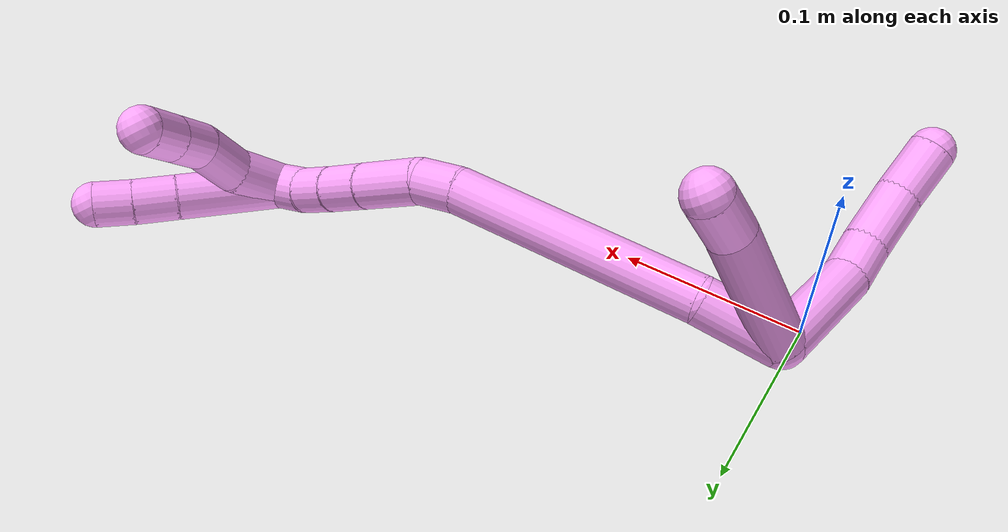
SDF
<sdf version="1.7">
 <world name="default">
  <model name="4">
   <static>0</static>
   <link name="4">
    <collision name="collision-cylinder-e_1_2_8">
     <pose>-0.020365 -0.023956 0.000604 1.54558 -0.704399 -0.688227</pose>
     <geometry><cylinder><radius>0.0125</radius><length>0.062897</length></cylinder></geometry>
     <surface>
      <friction><ode><mu>1.16</mu><mu2>1.16</mu2><slip1>0</slip1><slip2>0</slip2></ode></friction>
      <contact><ode><kp>1e+06</kp><kd>1</kd><max_vel>0</max_vel><min_depth>0.001</min_depth></ode></contact>
     </surface>
    </collision>
    <visual name="visual-cylinder-e_1_2_8">
     <pose>-0.020365 -0.023956 0.000604 1.54558 -0.704399 -0.688227</pose>
     <geometry><cylinder><radius>0.0125</radius><length>0.062897</length></cylinder></geometry>
     <material><ambient>1 0.65098 0.996078 1</ambient></material>
    </visual>
    <collision name="collision-cylinder-e_2_8_9">
     <pose>-0.048539 -0.055523 0.004621 1.14926 -0.752421 -0.500836</pose>
     <geometry><cylinder><radius>0.0125</radius><length>0.022851</length></cylinder></geometry>
     <surface>
      <friction><ode><mu>1.16</mu><mu2>1.16</mu2><slip1>0</slip1><slip2>0</slip2></ode></friction>
      <contact><ode><kp>1e+06</kp><kd>1</kd><max_vel>0</max_vel><min_depth>0.001</min_depth></ode></contact>
     </surface>
    </collision>
    <visual name="visual-cylinder-e_2_8_9">
     <pose>-0.048539 -0.055523 0.004621 1.14926 -0.752421 -0.500836</pose>
     <geometry><cylinder><radius>0.0125</radius><length>0.022851</length></cylinder></geometry>
     <material><ambient>1 0.65098 0.996078 1</ambient></material>
    </visual>
    <collision name="collision-cylinder-e_3_9_10">
     <pose>-0.069537 -0.072492 0.01404 1.0002 -0.87037 -0.49756</pose>
     <geometry><cylinder><radius>0.0125</radius><length>0.034504</length></cylinder></geometry>
     <surface>
      <friction><ode><mu>1.16</mu><mu2>1.16</mu2><slip1>0</slip1><slip2>0</slip2></ode></friction>
      <contact><ode><kp>1e+06</kp><kd>1</kd><max_vel>0</max_vel><min_depth>0.001</min_depth></ode></contact>
     </surface>
    </collision>
    <visual name="visual-cylinder-e_3_9_10">
     <pose>-0.069537 -0.072492 0.01404 1.0002 -0.87037 -0.49756</pose>
     <geometry><cylinder><radius>0.0125</radius><length>0.034504</length></cylinder></geometry>
     <material><ambient>1 0.65098 0.996078 1</ambient></material>
    </visual>
    <collision name="collision-cylinder-e_4_10_6">
     <pose>-0.095184 -0.087247 0.026125 0.725998 -0.992618 -0.405713</pose>
     <geometry><cylinder><radius>0.0125</radius><length>0.029748</length></cylinder></geometry>
     <surface>
      <friction><ode><mu>1.16</mu><mu2>1.16</mu2><slip1>0</slip1><slip2>0</slip2></ode></friction>
      <contact><ode><kp>1e+06</kp><kd>1</kd><max_vel>0</max_vel><min_depth>0.001</min_depth></ode></contact>
     </surface>
    </collision>
    <visual name="visual-cylinder-e_4_10_6">
     <pose>-0.095184 -0.087247 0.026125 0.725998 -0.992618 -0.405713</pose>
     <geometry><cylinder><radius>0.0125</radius><length>0.029748</length></cylinder></geometry>
     <material><ambient>1 0.65098 0.996078 1</ambient></material>
    </visual>
    <collision name="collision-cylinder-e_1_2_11">
     <pose>-0.000313 0.013034 0.033259 -0.373498 -0.008771 0.001657</pose>
     <geometry><cylinder><radius>0.0125</radius><length>0.071446</length></cylinder></geometry>
     <surface>
      <friction><ode><mu>1.16</mu><mu2>1.16</mu2><slip1>0</slip1><slip2>0</slip2></ode></friction>
      <contact><ode><kp>1e+06</kp><kd>1</kd><max_vel>0</max_vel><min_depth>0.001</min_depth></ode></contact>
     </surface>
    </collision>
    <visual name="visual-cylinder-e_1_2_11">
     <pose>-0.000313 0.013034 0.033259 -0.373498 -0.008771 0.001657</pose>
     <geometry><cylinder><radius>0.0125</radius><length>0.071446</length></cylinder></geometry>
     <material><ambient>1 0.65098 0.996078 1</ambient></material>
    </visual>
    <collision name="collision-cylinder-e_2_11_5">
     <pose>0.000224 0.034198 0.078223 -0.607083 0.059624 -0.01868</pose>
     <geometry><cylinder><radius>0.0125</radius><length>0.028554</length></cylinder></geometry>
     <surface>
      <friction><ode><mu>1.16</mu><mu2>1.16</mu2><slip1>0</slip1><slip2>0</slip2></ode></friction>
      <contact><ode><kp>1e+06</kp><kd>1</kd><max_vel>0</max_vel><min_depth>0.001</min_depth></ode></contact>
     </surface>
    </collision>
    <visual name="visual-cylinder-e_2_11_5">
     <pose>0.000224 0.034198 0.078223 -0.607083 0.059624 -0.01868</pose>
     <geometry><cylinder><radius>0.0125</radius><length>0.028554</length></cylinder></geometry>
     <material><ambient>1 0.65098 0.996078 1</ambient></material>
    </visual>
    <collision name="collision-cylinder-e_1_2_12">
     <pose>0.01318 -0.001692 0.017208 0.098008 0.651278 0.033117</pose>
     <geometry><cylinder><radius>0.0125</radius><length>0.043482</length></cylinder></geometry>
     <surface>
      <friction><ode><mu>1.16</mu><mu2>1.16</mu2><slip1>0</slip1><slip2>0</slip2></ode></friction>
      <contact><ode><kp>1e+06</kp><kd>1</kd><max_vel>0</max_vel><min_depth>0.001</min_depth></ode></contact>
     </surface>
    </collision>
    <visual name="visual-cylinder-e_1_2_12">
     <pose>0.01318 -0.001692 0.017208 0.098008 0.651278 0.033117</pose>
     <geometry><cylinder><radius>0.0125</radius><length>0.043482</length></cylinder></geometry>
     <material><ambient>1 0.65098 0.996078 1</ambient></material>
    </visual>
    <collision name="collision-cylinder-e_2_12_13">
     <pose>0.072008 -0.026072 0.079215 0.468792 0.737791 0.184103</pose>
     <geometry><cylinder><radius>0.0125</radius><length>0.135728</length></cylinder></geometry>
     <surface>
      <friction><ode><mu>1.16</mu><mu2>1.16</mu2><slip1>0</slip1><slip2>0</slip2></ode></friction>
      <contact><ode><kp>1e+06</kp><kd>1</kd><max_vel>0</max_vel><min_depth>0.001</min_depth></ode></contact>
     </surface>
    </collision>
    <visual name="visual-cylinder-e_2_12_13">
     <pose>0.072008 -0.026072 0.079215 0.468792 0.737791 0.184103</pose>
     <geometry><cylinder><radius>0.0125</radius><length>0.135728</length></cylinder></geometry>
     <material><ambient>1 0.65098 0.996078 1</ambient></material>
    </visual>
    <collision name="collision-cylinder-e_3_13_14">
     <pose>0.126571 -0.052171 0.130102 0.510625 0.906542 0.252916</pose>
     <geometry><cylinder><radius>0.0125</radius><length>0.022642</length></cylinder></geometry>
     <surface>
      <friction><ode><mu>1.16</mu><mu2>1.16</mu2><slip1>0</slip1><slip2>0</slip2></ode></friction>
      <contact><ode><kp>1e+06</kp><kd>1</kd><max_vel>0</max_vel><min_depth>0.001</min_depth></ode></contact>
     </surface>
    </collision>
    <visual name="visual-cylinder-e_3_13_14">
     <pose>0.126571 -0.052171 0.130102 0.510625 0.906542 0.252916</pose>
     <geometry><cylinder><radius>0.0125</radius><length>0.022642</length></cylinder></geometry>
     <material><ambient>1 0.65098 0.996078 1</ambient></material>
    </visual>
    <collision name="collision-cylinder-e_4_14_15">
     <pose>0.151263 -0.061744 0.140578 0.952089 1.12376 0.627749</pose>
     <geometry><cylinder><radius>0.0125</radius><length>0.034995</length></cylinder></geometry>
     <surface>
      <friction><ode><mu>1.16</mu><mu2>1.16</mu2><slip1>0</slip1><slip2>0</slip2></ode></friction>
      <contact><ode><kp>1e+06</kp><kd>1</kd><max_vel>0</max_vel><min_depth>0.001</min_depth></ode></contact>
     </surface>
    </collision>
    <visual name="visual-cylinder-e_4_14_15">
     <pose>0.151263 -0.061744 0.140578 0.952089 1.12376 0.627749</pose>
     <geometry><cylinder><radius>0.0125</radius><length>0.034995</length></cylinder></geometry>
     <material><ambient>1 0.65098 0.996078 1</ambient></material>
    </visual>
    <collision name="collision-cylinder-e_5_15_16">
     <pose>0.177183 -0.07251 0.147664 1.04047 1.08638 0.666009</pose>
     <geometry><cylinder><radius>0.0125</radius><length>0.02292</length></cylinder></geometry>
     <surface>
      <friction><ode><mu>1.16</mu><mu2>1.16</mu2><slip1>0</slip1><slip2>0</slip2></ode></friction>
      <contact><ode><kp>1e+06</kp><kd>1</kd><max_vel>0</max_vel><min_depth>0.001</min_depth></ode></contact>
     </surface>
    </collision>
    <visual name="visual-cylinder-e_5_15_16">
     <pose>0.177183 -0.07251 0.147664 1.04047 1.08638 0.666009</pose>
     <geometry><cylinder><radius>0.0125</radius><length>0.02292</length></cylinder></geometry>
     <material><ambient>1 0.65098 0.996078 1</ambient></material>
    </visual>
    <collision name="collision-cylinder-e_6_16_17">
     <pose>0.195906 -0.081759 0.152755 1.09545 1.02383 0.660373</pose>
     <geometry><cylinder><radius>0.0125</radius><length>0.020093</length></cylinder></geometry>
     <surface>
      <friction><ode><mu>1.16</mu><mu2>1.16</mu2><slip1>0</slip1><slip2>0</slip2></ode></friction>
      <contact><ode><kp>1e+06</kp><kd>1</kd><max_vel>0</max_vel><min_depth>0.001</min_depth></ode></contact>
     </surface>
    </collision>
    <visual name="visual-cylinder-e_6_16_17">
     <pose>0.195906 -0.081759 0.152755 1.09545 1.02383 0.660373</pose>
     <geometry><cylinder><radius>0.0125</radius><length>0.020093</length></cylinder></geometry>
     <material><ambient>1 0.65098 0.996078 1</ambient></material>
    </visual>
    <collision name="collision-cylinder-e_7_17_1">
     <pose>0.212278 -0.091425 0.159082 0.905892 0.884743 0.453158</pose>
     <geometry><cylinder><radius>0.0125</radius><length>0.020139</length></cylinder></geometry>
     <surface>
      <friction><ode><mu>1.16</mu><mu2>1.16</mu2><slip1>0</slip1><slip2>0</slip2></ode></friction>
      <contact><ode><kp>1e+06</kp><kd>1</kd><max_vel>0</max_vel><min_depth>0.001</min_depth></ode></contact>
     </surface>
    </collision>
    <visual name="visual-cylinder-e_7_17_1">
     <pose>0.212278 -0.091425 0.159082 0.905892 0.884743 0.453158</pose>
     <geometry><cylinder><radius>0.0125</radius><length>0.020139</length></cylinder></geometry>
     <material><ambient>1 0.65098 0.996078 1</ambient></material>
    </visual>
    <collision name="collision-cylinder-e_1_1_18">
     <pose>0.243839 -0.085122 0.173192 -0.838817 1.00118 -0.478495</pose>
     <geometry><cylinder><radius>0.0125</radius><length>0.056452</length></cylinder></geometry>
     <surface>
      <friction><ode><mu>1.16</mu><mu2>1.16</mu2><slip1>0</slip1><slip2>0</slip2></ode></friction>
      <contact><ode><kp>1e+06</kp><kd>1</kd><max_vel>0</max_vel><min_depth>0.001</min_depth></ode></contact>
     </surface>
    </collision>
    <visual name="visual-cylinder-e_1_1_18">
     <pose>0.243839 -0.085122 0.173192 -0.838817 1.00118 -0.478495</pose>
     <geometry><cylinder><radius>0.0125</radius><length>0.056452</length></cylinder></geometry>
     <material><ambient>1 0.65098 0.996078 1</ambient></material>
    </visual>
    <collision name="collision-cylinder-e_2_18_19">
     <pose>0.277588 -0.069799 0.187469 -0.772598 1.04962 -0.462544</pose>
     <geometry><cylinder><radius>0.0125</radius><length>0.023015</length></cylinder></geometry>
     <surface>
      <friction><ode><mu>1.16</mu><mu2>1.16</mu2><slip1>0</slip1><slip2>0</slip2></ode></friction>
      <contact><ode><kp>1e+06</kp><kd>1</kd><max_vel>0</max_vel><min_depth>0.001</min_depth></ode></contact>
     </surface>
    </collision>
    <visual name="visual-cylinder-e_2_18_19">
     <pose>0.277588 -0.069799 0.187469 -0.772598 1.04962 -0.462544</pose>
     <geometry><cylinder><radius>0.0125</radius><length>0.023015</length></cylinder></geometry>
     <material><ambient>1 0.65098 0.996078 1</ambient></material>
    </visual>
    <collision name="collision-cylinder-e_3_19_4">
     <pose>0.296386 -0.062511 0.195673 -0.67596 1.03317 -0.39411</pose>
     <geometry><cylinder><radius>0.0125</radius><length>0.020533</length></cylinder></geometry>
     <surface>
      <friction><ode><mu>1.16</mu><mu2>1.16</mu2><slip1>0</slip1><slip2>0</slip2></ode></friction>
      <contact><ode><kp>1e+06</kp><kd>1</kd><max_vel>0</max_vel><min_depth>0.001</min_depth></ode></contact>
     </surface>
    </collision>
    <visual name="visual-cylinder-e_3_19_4">
     <pose>0.296386 -0.062511 0.195673 -0.67596 1.03317 -0.39411</pose>
     <geometry><cylinder><radius>0.0125</radius><length>0.020533</length></cylinder></geometry>
     <material><ambient>1 0.65098 0.996078 1</ambient></material>
    </visual>
    <collision name="collision-cylinder-e_1_1_20">
     <pose>0.226178 -0.087089 0.172758 -0.765291 0.424801 -0.17316</pose>
     <geometry><cylinder><radius>0.0125</radius><length>0.029647</length></cylinder></geometry>
     <surface>
      <friction><ode><mu>1.16</mu><mu2>1.16</mu2><slip1>0</slip1><slip2>0</slip2></ode></friction>
      <contact><ode><kp>1e+06</kp><kd>1</kd><max_vel>0</max_vel><min_depth>0.001</min_depth></ode></contact>
     </surface>
    </collision>
    <visual name="visual-cylinder-e_1_1_20">
     <pose>0.226178 -0.087089 0.172758 -0.765291 0.424801 -0.17316</pose>
     <geometry><cylinder><radius>0.0125</radius><length>0.029647</length></cylinder></geometry>
     <material><ambient>1 0.65098 0.996078 1</ambient></material>
    </visual>
    <collision name="collision-cylinder-e_2_20_21">
     <pose>0.233681 -0.068739 0.192265 -0.744261 0.104563 -0.040844</pose>
     <geometry><cylinder><radius>0.0125</radius><length>0.0267</length></cylinder></geometry>
     <surface>
      <friction><ode><mu>1.16</mu><mu2>1.16</mu2><slip1>0</slip1><slip2>0</slip2></ode></friction>
      <contact><ode><kp>1e+06</kp><kd>1</kd><max_vel>0</max_vel><min_depth>0.001</min_depth></ode></contact>
     </surface>
    </collision>
    <visual name="visual-cylinder-e_2_20_21">
     <pose>0.233681 -0.068739 0.192265 -0.744261 0.104563 -0.040844</pose>
     <geometry><cylinder><radius>0.0125</radius><length>0.0267</length></cylinder></geometry>
     <material><ambient>1 0.65098 0.996078 1</ambient></material>
    </visual>
    <collision name="collision-cylinder-e_3_21_22">
     <pose>0.236826 -0.05003 0.207159 -1.0851 0.158076 -0.09543</pose>
     <geometry><cylinder><radius>0.0125</radius><length>0.022246</length></cylinder></geometry>
     <surface>
      <friction><ode><mu>1.16</mu><mu2>1.16</mu2><slip1>0</slip1><slip2>0</slip2></ode></friction>
      <contact><ode><kp>1e+06</kp><kd>1</kd><max_vel>0</max_vel><min_depth>0.001</min_depth></ode></contact>
     </surface>
    </collision>
    <visual name="visual-cylinder-e_3_21_22">
     <pose>0.236826 -0.05003 0.207159 -1.0851 0.158076 -0.09543</pose>
     <geometry><cylinder><radius>0.0125</radius><length>0.022246</length></cylinder></geometry>
     <material><ambient>1 0.65098 0.996078 1</ambient></material>
    </visual>
    <collision name="collision-cylinder-e_4_22_3">
     <pose>0.239931 -0.030783 0.216961 -1.11496 0.126873 -0.079163</pose>
     <geometry><cylinder><radius>0.0125</radius><length>0.021407</length></cylinder></geometry>
     <surface>
      <friction><ode><mu>1.16</mu><mu2>1.16</mu2><slip1>0</slip1><slip2>0</slip2></ode></friction>
      <contact><ode><kp>1e+06</kp><kd>1</kd><max_vel>0</max_vel><min_depth>0.001</min_depth></ode></contact>
     </surface>
    </collision>
    <visual name="visual-cylinder-e_4_22_3">
     <pose>0.239931 -0.030783 0.216961 -1.11496 0.126873 -0.079163</pose>
     <geometry><cylinder><radius>0.0125</radius><length>0.021407</length></cylinder></geometry>
     <material><ambient>1 0.65098 0.996078 1</ambient></material>
    </visual>
    <collision name="collision-sphere-3">
     <pose>0.241285 -0.02125 0.221635 0 -0 0</pose>
     <geometry><sphere><radius>0.0125</radius></sphere></geometry>
     <surface>
      <friction><ode><mu>1.16</mu><mu2>1.16</mu2><slip1>0</slip1><slip2>0</slip2></ode></friction>
      <contact><ode><kp>1e+06</kp><kd>1</kd><max_vel>0</max_vel><min_depth>0.001</min_depth></ode></contact>
     </surface>
    </collision>
    <visual name="visual-sphere-3">
     <pose>0.241285 -0.02125 0.221635 0 -0 0</pose>
     <geometry><sphere><radius>0.0125</radius></sphere></geometry>
     <material><ambient>1 0.65098 0.996078 1</ambient></material>
    </visual>
    <collision name="collision-sphere-22">
     <pose>0.238576 -0.040316 0.212287 0 -0 0</pose>
     <geometry><sphere><radius>0.0125</radius></sphere></geometry>
     <surface>
      <friction><ode><mu>1.16</mu><mu2>1.16</mu2><slip1>0</slip1><slip2>0</slip2></ode></friction>
      <contact><ode><kp>1e+06</kp><kd>1</kd><max_vel>0</max_vel><min_depth>0.001</min_depth></ode></contact>
     </surface>
    </collision>
    <visual name="visual-sphere-22">
     <pose>0.238576 -0.040316 0.212287 0 -0 0</pose>
     <geometry><sphere><radius>0.0125</radius></sphere></geometry>
     <material><ambient>1 0.65098 0.996078 1</ambient></material>
    </visual>
    <collision name="collision-sphere-21">
     <pose>0.235075 -0.059744 0.202031 0 -0 0</pose>
     <geometry><sphere><radius>0.0125</radius></sphere></geometry>
     <surface>
      <friction><ode><mu>1.16</mu><mu2>1.16</mu2><slip1>0</slip1><slip2>0</slip2></ode></friction>
      <contact><ode><kp>1e+06</kp><kd>1</kd><max_vel>0</max_vel><min_depth>0.001</min_depth></ode></contact>
     </surface>
    </collision>
    <visual name="visual-sphere-21">
     <pose>0.235075 -0.059744 0.202031 0 -0 0</pose>
     <geometry><sphere><radius>0.0125</radius></sphere></geometry>
     <material><ambient>1 0.65098 0.996078 1</ambient></material>
    </visual>
    <collision name="collision-sphere-20">
     <pose>0.232288 -0.077733 0.182498 0 -0 0</pose>
     <geometry><sphere><radius>0.0125</radius></sphere></geometry>
     <surface>
      <friction><ode><mu>1.16</mu><mu2>1.16</mu2><slip1>0</slip1><slip2>0</slip2></ode></friction>
      <contact><ode><kp>1e+06</kp><kd>1</kd><max_vel>0</max_vel><min_depth>0.001</min_depth></ode></contact>
     </surface>
    </collision>
    <visual name="visual-sphere-20">
     <pose>0.232288 -0.077733 0.182498 0 -0 0</pose>
     <geometry><sphere><radius>0.0125</radius></sphere></geometry>
     <material><ambient>1 0.65098 0.996078 1</ambient></material>
    </visual>
    <collision name="collision-sphere-4">
     <pose>0.305204 -0.059222 0.199774 0 -0 0</pose>
     <geometry><sphere><radius>0.0125</radius></sphere></geometry>
     <surface>
      <friction><ode><mu>1.16</mu><mu2>1.16</mu2><slip1>0</slip1><slip2>0</slip2></ode></friction>
      <contact><ode><kp>1e+06</kp><kd>1</kd><max_vel>0</max_vel><min_depth>0.001</min_depth></ode></contact>
     </surface>
    </collision>
    <visual name="visual-sphere-4">
     <pose>0.305204 -0.059222 0.199774 0 -0 0</pose>
     <geometry><sphere><radius>0.0125</radius></sphere></geometry>
     <material><ambient>1 0.65098 0.996078 1</ambient></material>
    </visual>
    <collision name="collision-sphere-11">
     <pose>-0.000627 0.026068 0.066517 0 -0 0</pose>
     <geometry><sphere><radius>0.0125</radius></sphere></geometry>
     <surface>
      <friction><ode><mu>1.16</mu><mu2>1.16</mu2><slip1>0</slip1><slip2>0</slip2></ode></friction>
      <contact><ode><kp>1e+06</kp><kd>1</kd><max_vel>0</max_vel><min_depth>0.001</min_depth></ode></contact>
     </surface>
    </collision>
    <visual name="visual-sphere-11">
     <pose>-0.000627 0.026068 0.066517 0 -0 0</pose>
     <geometry><sphere><radius>0.0125</radius></sphere></geometry>
     <material><ambient>1 0.65098 0.996078 1</ambient></material>
    </visual>
    <collision name="collision-sphere-6">
     <pose>-0.107641 -0.092643 0.032204 0 -0 0</pose>
     <geometry><sphere><radius>0.0125</radius></sphere></geometry>
     <surface>
      <friction><ode><mu>1.16</mu><mu2>1.16</mu2><slip1>0</slip1><slip2>0</slip2></ode></friction>
      <contact><ode><kp>1e+06</kp><kd>1</kd><max_vel>0</max_vel><min_depth>0.001</min_depth></ode></contact>
     </surface>
    </collision>
    <visual name="visual-sphere-6">
     <pose>-0.107641 -0.092643 0.032204 0 -0 0</pose>
     <geometry><sphere><radius>0.0125</radius></sphere></geometry>
     <material><ambient>1 0.65098 0.996078 1</ambient></material>
    </visual>
    <collision name="collision-sphere-10">
     <pose>-0.082728 -0.08185 0.020046 0 -0 0</pose>
     <geometry><sphere><radius>0.0125</radius></sphere></geometry>
     <surface>
      <friction><ode><mu>1.16</mu><mu2>1.16</mu2><slip1>0</slip1><slip2>0</slip2></ode></friction>
      <contact><ode><kp>1e+06</kp><kd>1</kd><max_vel>0</max_vel><min_depth>0.001</min_depth></ode></contact>
     </surface>
    </collision>
    <visual name="visual-sphere-10">
     <pose>-0.082728 -0.08185 0.020046 0 -0 0</pose>
     <geometry><sphere><radius>0.0125</radius></sphere></geometry>
     <material><ambient>1 0.65098 0.996078 1</ambient></material>
    </visual>
    <collision name="collision-sphere-9">
     <pose>-0.056347 -0.063134 0.008034 0 -0 0</pose>
     <geometry><sphere><radius>0.0125</radius></sphere></geometry>
     <surface>
      <friction><ode><mu>1.16</mu><mu2>1.16</mu2><slip1>0</slip1><slip2>0</slip2></ode></friction>
      <contact><ode><kp>1e+06</kp><kd>1</kd><max_vel>0</max_vel><min_depth>0.001</min_depth></ode></contact>
     </surface>
    </collision>
    <visual name="visual-sphere-9">
     <pose>-0.056347 -0.063134 0.008034 0 -0 0</pose>
     <geometry><sphere><radius>0.0125</radius></sphere></geometry>
     <material><ambient>1 0.65098 0.996078 1</ambient></material>
    </visual>
    <collision name="collision-sphere-2">
     <geometry><sphere><radius>0.0125</radius></sphere></geometry>
     <surface>
      <friction><ode><mu>1.16</mu><mu2>1.16</mu2><slip1>0</slip1><slip2>0</slip2></ode></friction>
      <contact><ode><kp>1e+06</kp><kd>1</kd><max_vel>0</max_vel><min_depth>0.001</min_depth></ode></contact>
     </surface>
    </collision>
    <visual name="visual-sphere-2">
     <geometry><sphere><radius>0.0125</radius></sphere></geometry>
     <material><ambient>1 0.65098 0.996078 1</ambient></material>
    </visual>
    <collision name="collision-sphere-19">
     <pose>0.287568 -0.0658 0.191572 0 -0 0</pose>
     <geometry><sphere><radius>0.0125</radius></sphere></geometry>
     <surface>
      <friction><ode><mu>1.16</mu><mu2>1.16</mu2><slip1>0</slip1><slip2>0</slip2></ode></friction>
      <contact><ode><kp>1e+06</kp><kd>1</kd><max_vel>0</max_vel><min_depth>0.001</min_depth></ode></contact>
     </surface>
    </collision>
    <visual name="visual-sphere-19">
     <pose>0.287568 -0.0658 0.191572 0 -0 0</pose>
     <geometry><sphere><radius>0.0125</radius></sphere></geometry>
     <material><ambient>1 0.65098 0.996078 1</ambient></material>
    </visual>
    <collision name="collision-sphere-8">
     <pose>-0.04073 -0.047912 0.001208 0 -0 0</pose>
     <geometry><sphere><radius>0.0125</radius></sphere></geometry>
     <surface>
      <friction><ode><mu>1.16</mu><mu2>1.16</mu2><slip1>0</slip1><slip2>0</slip2></ode></friction>
      <contact><ode><kp>1e+06</kp><kd>1</kd><max_vel>0</max_vel><min_depth>0.001</min_depth></ode></contact>
     </surface>
    </collision>
    <visual name="visual-sphere-8">
     <pose>-0.04073 -0.047912 0.001208 0 -0 0</pose>
     <geometry><sphere><radius>0.0125</radius></sphere></geometry>
     <material><ambient>1 0.65098 0.996078 1</ambient></material>
    </visual>
    <collision name="collision-sphere-5">
     <pose>0.001075 0.042328 0.089928 0 -0 0</pose>
     <geometry><sphere><radius>0.0125</radius></sphere></geometry>
     <surface>
      <friction><ode><mu>1.16</mu><mu2>1.16</mu2><slip1>0</slip1><slip2>0</slip2></ode></friction>
      <contact><ode><kp>1e+06</kp><kd>1</kd><max_vel>0</max_vel><min_depth>0.001</min_depth></ode></contact>
     </surface>
    </collision>
    <visual name="visual-sphere-5">
     <pose>0.001075 0.042328 0.089928 0 -0 0</pose>
     <geometry><sphere><radius>0.0125</radius></sphere></geometry>
     <material><ambient>1 0.65098 0.996078 1</ambient></material>
    </visual>
    <collision name="collision-sphere-12">
     <pose>0.026359 -0.003384 0.034416 0 -0 0</pose>
     <geometry><sphere><radius>0.0125</radius></sphere></geometry>
     <surface>
      <friction><ode><mu>1.16</mu><mu2>1.16</mu2><slip1>0</slip1><slip2>0</slip2></ode></friction>
      <contact><ode><kp>1e+06</kp><kd>1</kd><max_vel>0</max_vel><min_depth>0.001</min_depth></ode></contact>
     </surface>
    </collision>
    <visual name="visual-sphere-12">
     <pose>0.026359 -0.003384 0.034416 0 -0 0</pose>
     <geometry><sphere><radius>0.0125</radius></sphere></geometry>
     <material><ambient>1 0.65098 0.996078 1</ambient></material>
    </visual>
    <collision name="collision-sphere-13">
     <pose>0.117657 -0.04876 0.124013 0 -0 0</pose>
     <geometry><sphere><radius>0.0125</radius></sphere></geometry>
     <surface>
      <friction><ode><mu>1.16</mu><mu2>1.16</mu2><slip1>0</slip1><slip2>0</slip2></ode></friction>
      <contact><ode><kp>1e+06</kp><kd>1</kd><max_vel>0</max_vel><min_depth>0.001</min_depth></ode></contact>
     </surface>
    </collision>
    <visual name="visual-sphere-13">
     <pose>0.117657 -0.04876 0.124013 0 -0 0</pose>
     <geometry><sphere><radius>0.0125</radius></sphere></geometry>
     <material><ambient>1 0.65098 0.996078 1</ambient></material>
    </visual>
    <collision name="collision-sphere-14">
     <pose>0.135485 -0.055582 0.136191 0 -0 0</pose>
     <geometry><sphere><radius>0.0125</radius></sphere></geometry>
     <surface>
      <friction><ode><mu>1.16</mu><mu2>1.16</mu2><slip1>0</slip1><slip2>0</slip2></ode></friction>
      <contact><ode><kp>1e+06</kp><kd>1</kd><max_vel>0</max_vel><min_depth>0.001</min_depth></ode></contact>
     </surface>
    </collision>
    <visual name="visual-sphere-14">
     <pose>0.135485 -0.055582 0.136191 0 -0 0</pose>
     <geometry><sphere><radius>0.0125</radius></sphere></geometry>
     <material><ambient>1 0.65098 0.996078 1</ambient></material>
    </visual>
    <collision name="collision-sphere-15">
     <pose>0.167041 -0.067906 0.144965 0 -0 0</pose>
     <geometry><sphere><radius>0.0125</radius></sphere></geometry>
     <surface>
      <friction><ode><mu>1.16</mu><mu2>1.16</mu2><slip1>0</slip1><slip2>0</slip2></ode></friction>
      <contact><ode><kp>1e+06</kp><kd>1</kd><max_vel>0</max_vel><min_depth>0.001</min_depth></ode></contact>
     </surface>
    </collision>
    <visual name="visual-sphere-15">
     <pose>0.167041 -0.067906 0.144965 0 -0 0</pose>
     <geometry><sphere><radius>0.0125</radius></sphere></geometry>
     <material><ambient>1 0.65098 0.996078 1</ambient></material>
    </visual>
    <collision name="collision-sphere-16">
     <pose>0.187325 -0.077113 0.150364 0 -0 0</pose>
     <geometry><sphere><radius>0.0125</radius></sphere></geometry>
     <surface>
      <friction><ode><mu>1.16</mu><mu2>1.16</mu2><slip1>0</slip1><slip2>0</slip2></ode></friction>
      <contact><ode><kp>1e+06</kp><kd>1</kd><max_vel>0</max_vel><min_depth>0.001</min_depth></ode></contact>
     </surface>
    </collision>
    <visual name="visual-sphere-16">
     <pose>0.187325 -0.077113 0.150364 0 -0 0</pose>
     <geometry><sphere><radius>0.0125</radius></sphere></geometry>
     <material><ambient>1 0.65098 0.996078 1</ambient></material>
    </visual>
    <collision name="collision-sphere-17">
     <pose>0.204487 -0.086405 0.155147 0 -0 0</pose>
     <geometry><sphere><radius>0.0125</radius></sphere></geometry>
     <surface>
      <friction><ode><mu>1.16</mu><mu2>1.16</mu2><slip1>0</slip1><slip2>0</slip2></ode></friction>
      <contact><ode><kp>1e+06</kp><kd>1</kd><max_vel>0</max_vel><min_depth>0.001</min_depth></ode></contact>
     </surface>
    </collision>
    <visual name="visual-sphere-17">
     <pose>0.204487 -0.086405 0.155147 0 -0 0</pose>
     <geometry><sphere><radius>0.0125</radius></sphere></geometry>
     <material><ambient>1 0.65098 0.996078 1</ambient></material>
    </visual>
    <collision name="collision-sphere-1">
     <pose>0.220069 -0.096445 0.163018 0 -0 0</pose>
     <geometry><sphere><radius>0.0125</radius></sphere></geometry>
     <surface>
      <friction><ode><mu>1.16</mu><mu2>1.16</mu2><slip1>0</slip1><slip2>0</slip2></ode></friction>
      <contact><ode><kp>1e+06</kp><kd>1</kd><max_vel>0</max_vel><min_depth>0.001</min_depth></ode></contact>
     </surface>
    </collision>
    <visual name="visual-sphere-1">
     <pose>0.220069 -0.096445 0.163018 0 -0 0</pose>
     <geometry><sphere><radius>0.0125</radius></sphere></geometry>
     <material><ambient>1 0.65098 0.996078 1</ambient></material>
    </visual>
    <collision name="collision-sphere-18">
     <pose>0.267608 -0.073799 0.183366 0 -0 0</pose>
     <geometry><sphere><radius>0.0125</radius></sphere></geometry>
     <surface>
      <friction><ode><mu>1.16</mu><mu2>1.16</mu2><slip1>0</slip1><slip2>0</slip2></ode></friction>
      <contact><ode><kp>1e+06</kp><kd>1</kd><max_vel>0</max_vel><min_depth>0.001</min_depth></ode></contact>
     </surface>
    </collision>
    <visual name="visual-sphere-18">
     <pose>0.267608 -0.073799 0.183366 0 -0 0</pose>
     <geometry><sphere><radius>0.0125</radius></sphere></geometry>
     <material><ambient>1 0.65098 0.996078 1</ambient></material>
    </visual>
    <inertial>
     <pose>0.096974 -0.042599 0.096874 0 -0 0</pose>
     <mass>0.75</mass>
     <inertia>
      <ixx>0.000271</ixx>
      <ixy>0</ixy>
      <ixz>0</ixz>
      <iyy>0.000303</iyy>
      <iyz>0</iyz>
      <izz>-5.5e-05</izz>
     </inertia>
    </inertial>
   </link>
   <pose>0.00048 0.042938 0.038506 0.633866 0.44014 0.713818</pose>
  </model>
 </world>
</sdf>
